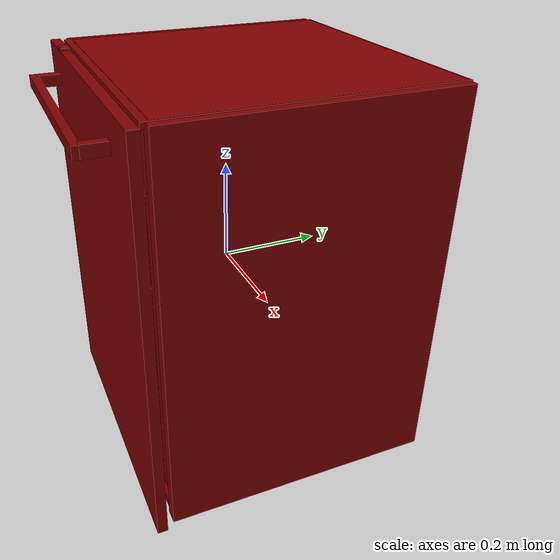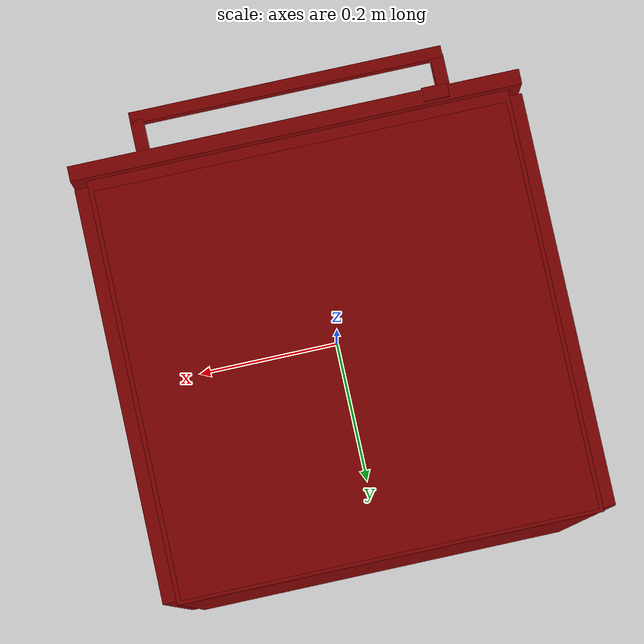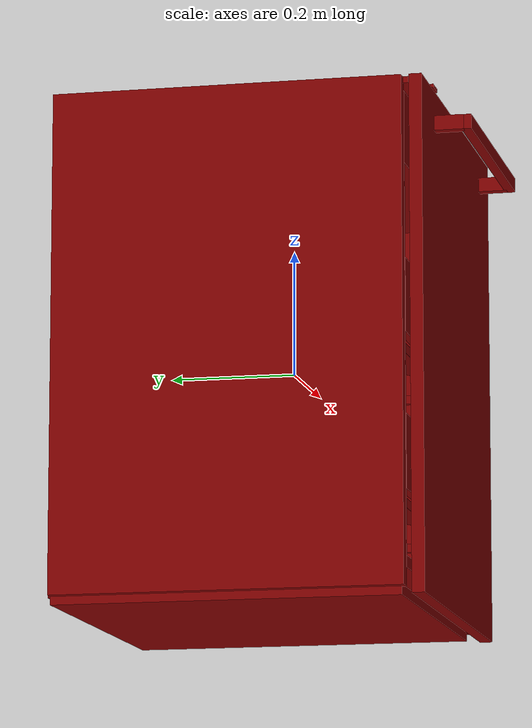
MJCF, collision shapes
<?xml version='1.0' encoding='UTF-8'?>
<mujoco model="model">
  <option timestep="0.002" gravity="0.0 0.0 -9.81"/>
  <compiler angle="radian"/>
  <asset>
    <mesh file="visuals/button_power.obj" name="button_power_vis"/>
    <mesh file="visuals/Body001.obj" name="Body001_vis"/>
    <mesh file="visuals/door.obj" name="door_vis"/>
    <mesh file="visuals/rack0.obj" name="rack0_vis"/>
    <mesh file="visuals/rack1.obj" name="rack1_vis"/>
    <texture file="visuals/T_BC001.png" name="Body001_material" type="2d"/>
    <material name="Body001_material" rgba="1 1 1 1.0" texture="Body001_material" shininess="0.1" specular="6"/>
    <texture file="visuals/T_BC001.png" name="door_material" type="2d"/>
    <material name="door_material" rgba="1 1 1 1.0" texture="door_material" shininess="0.1" specular="6"/>
    <texture file="visuals/T_BC001.png" name="button_power_material" type="2d"/>
    <material name="button_power_material" rgba="1 1 1 1.0" texture="button_power_material" shininess="0.1" specular="6"/>
    <texture file="visuals/T_BC001.png" name="rack0_material" type="2d"/>
    <material name="rack0_material" rgba="1 1 1 1.0" texture="rack0_material" shininess="0.1" specular="6"/>
    <texture file="visuals/T_BC001.png" name="rack1_material" type="2d"/>
    <material name="rack1_material" rgba="1 1 1 1.0" texture="rack1_material" shininess="0.1" specular="6"/>
  </asset>
  <default>
    <default class="visual">
      <geom conaffinity="0" contype="0" group="1" type="mesh"/>
    </default>
    <default class="collision">
      <geom group="0" rgba="0.5 0 0 0.5"/>
    </default>
    <default class="spawn">
      <geom group="0" rgba="1 1 1 0.5" contype="0" conaffinity="0"/>
      <site group="0" rgba="1 1 1 0.5"/>
    </default>
    <default class="region">
      <geom group="1" conaffinity="0" contype="0" rgba="0 1 0 0"/>
    </default>
  </default>
  <worldbody>
    <body>
      <body name="object">
        <geom mesh="Body001_vis" type="mesh" solimp="0.998 0.998 0.001" solref="0.001 1" friction="0.95 0.3 0.1" class="visual" material="Body001_material"/>
        <geom class="collision" type="box" pos="-0.00036234 0.28176484 0.00833044" size="0.2814403176307678 0.04106198996305466 0.39416447281837463" quat="1.0 0.0 0.0 0.0"/>
        <geom class="collision" type="box" pos="-0.00036234 0.04216632 0.39767548" size="0.2814466059207916 0.28169476985931396 0.004898284561932087" quat="1.0 0.0 0.0 0.0"/>
        <geom class="collision" type="box" pos="-0.28667429 0.04382579 0.00895210" size="0.011648095212876797 0.2752534747123718 0.3926711976528168" quat="1.0 0.0 0.0 0.0"/>
        <geom class="collision" type="box" pos="0.28510299 0.04382579 0.00895210" size="0.013638983480632305 0.2752538323402405 0.3926714360713959" quat="1.0 0.0 0.0 0.0"/>
        <geom class="collision" type="box" pos="-0.00036234 0.04667373 -0.38865549" size="0.2814757227897644 0.27234360575675964 0.00816165842115879" quat="1.0 0.0 0.0 0.0"/>
        <geom class="collision" type="box" pos="-0.25013936 0.04727859 -0.02722334" size="0.015567146241664886 0.27181267738342285 0.32058045268058777" quat="1.0 0.0 0.0 0.0"/>
        <geom class="collision" type="box" pos="0.25114334 0.04727859 -0.02722334" size="0.023964108899235725 0.2718128263950348 0.3205800950527191" quat="1.0 0.0 0.0 0.0"/>
        <geom class="collision" type="box" pos="-0.00061214 0.04727856 0.34046974" size="0.2754879593849182 0.2718161642551422 0.06244611740112305" quat="1.0 0.0 0.0 0.0"/>
        <geom class="collision" type="box" pos="-0.00652087 0.04727862 -0.33976794" size="0.23438744246959686 0.2718186378479004 0.009313549846410751" quat="1.0 0.0 0.0 0.0"/>
        <geom class="collision" type="box" pos="0.21967526 0.04727859 -0.00535924" size="0.006139175966382027 0.2178913801908493 0.0067922757007181644" quat="1.0 0.0 0.0 0.0"/>
        <geom class="collision" type="box" pos="0.21967526 0.04727859 -0.25062258" size="0.006139173172414303 0.2178913801908493 0.0067922757007181644" quat="1.0 0.0 0.0 0.0"/>
        <geom class="collision" type="box" pos="-0.22579145 0.04727859 -0.00473538" size="0.007670301478356123 0.21789081394672394 0.006792258005589247" quat="1.0 0.0 0.0 0.0"/>
        <geom class="collision" type="box" pos="-0.22579145 0.04727859 -0.25062258" size="0.007670306600630283 0.21789109706878662 0.006792266853153706" quat="1.0 0.0 0.0 0.0"/>
        <body name="door">
          <joint axis="1.0 0.0 0.0" pos="0.00018242 -0.26410335170752525 -0.39683436477493284" limited="true" name="door_joint" range="0.0 0.5235987755982988" type="hinge" damping="1" frictionloss="10" armature="1" stiffness="2"/>
          <geom mesh="door_vis" type="mesh" solimp="0.998 0.998 0.001" solref="0.001 1" friction="0.95 0.3 0.1" class="visual" material="door_material"/>
          <geom class="collision" type="box" pos="-0.00036234 -0.31701434 0.34504046" size="0.21125565469264984 0.007914526388049126 0.011457645334303379" quat="1.0 0.0 0.0 0.0" name="door_handle_main"/>
          <geom class="collision" type="box" pos="0.20221449 -0.28995174 0.34504046" size="0.008816145360469818 0.023113897070288658 0.011457663029432297" quat="1.0 0.0 0.0 0.0"/>
          <geom class="collision" type="box" pos="-0.20353897 -0.28995174 0.34504046" size="0.008816158398985863 0.023113969713449478 0.011457680724561214" quat="1.0 0.0 0.0 0.0"/>
          <geom class="collision" type="box" pos="0.00018242 -0.25414482 0.00196726" size="0.30183345079421997 0.009958531707525253 0.39880162477493286" quat="1.0 0.0 0.0 0.0" name="door_main"/>
          <body name="button_power">
            <joint axis="0.0 0.0 -1.0" pos="-0.18769951 -0.25586516 0.40550595" limited="true" name="button_power_joint" range="0.0 0.003" type="slide" damping="1" frictionloss="1" armature=".01" springref="-1" stiffness="4"/>
            <geom mesh="button_power_vis" type="mesh" solimp="0.998 0.998 0.001" solref="0.001 1" friction="0.95 0.3 0.1" class="visual" material="button_power_material"/>
            <geom class="collision" type="box" pos="-0.18791059 -0.25588995 0.40690058" size="0.017101047560572624 0.00900245737284422 0.0025712670758366585" quat="1.0 0.0 0.0 0.0"/>
          </body>
        </body>
        <body name="rack0">
          <geom class="region" name="reg_rack0" type="box" pos="-0.0016470950000000012 0.013524220000000003 -0.088446985" size="0.20115812500000002 0.19481879 0.088672845"/>
          <joint axis="0.0 -1.0 0.0" pos="-0.00221964 0.01166707 -0.14091631" limited="true" name="rack0_joint" range="0.0 0.2" type="slide" damping="1" frictionloss="1" armature=".01" stiffness="0.05"/>
          <geom mesh="rack0_vis" type="mesh" solimp="0.998 0.998 0.001" solref="0.001 1" friction="0.95 0.3 0.1" class="visual" material="rack0_material"/>
          <geom class="collision" type="box" pos="-0.00624185 -0.19375844 -0.14702625" size="0.2229871302843094 0.006409452296793461 0.05940254032611847" quat="1.0 0.0 0.0 0.0"/>
          <geom class="collision" type="box" pos="-0.00624185 0.21941292 -0.14662120" size="0.22330600023269653 0.006409641355276108 0.09147005528211594" quat="1.0 0.0 0.0 0.0"/>
          <geom class="collision" type="box" pos="-0.22204408 0.01349026 -0.14702625" size="0.006625048350542784 0.20031298696994781 0.05940164253115654" quat="1.0 0.0 0.0 0.0"/>
          <geom class="collision" type="box" pos="0.21335362 0.01349026 -0.14702625" size="0.006625059526413679 0.20031243562698364 0.05940169468522072" quat="1.0 0.0 0.0 0.0"/>
          <geom class="collision" type="box" pos="-0.00454231 0.12190130 -0.20753647" size="0.20721404254436493 0.10439314693212509 0.006625238806009293" quat="1.0 0.0 0.0 0.0"/>
          <geom class="collision" type="box" pos="0.12312634 0.14081541 -0.17458782" size="0.08457522839307785 0.006409274879842997 0.04970487952232361" quat="1.0 0.0 0.0 0.0"/>
          <geom class="collision" type="box" pos="-0.12908816 0.14081541 -0.17458782" size="0.08457522839307785 0.006409286521375179 0.04970487952232361" quat="1.0 0.0 0.0 0.0"/>
          <geom class="collision" type="box" pos="0.12172460 0.04002528 -0.17458782" size="0.10306160151958466 0.0064094350673258305 0.04970487952232361" quat="1.0 0.0 0.0 0.0"/>
          <geom class="collision" type="box" pos="-0.11866020 0.04002528 -0.17458782" size="0.0972515195608139 0.0064094350673258305 0.04970487952232361" quat="1.0 0.0 0.0 0.0"/>
          <geom class="collision" type="box" pos="-0.00454231 -0.02490339 -0.23499588" size="0.22267431020736694 0.047741953283548355 0.004735956434160471" quat="1.0 0.0 0.0 0.0"/>
          <geom class="collision" type="box" pos="-0.00454231 -0.12647952 -0.20115427" size="0.22267431020736694 0.05817246064543724 0.006625238340348005" quat="0.993613600730896 0.11283617466688156 -2.5054663825159542e-17 4.8184369564454835e-24"/>
          <geom class="collision" type="box" pos="-0.12602560 -0.07174440 -0.17458782" size="0.07013433426618576 0.0064094350673258305 0.04970487952232361" quat="1.0 0.0 0.0 0.0"/>
          <geom class="collision" type="box" pos="-0.12602560 -0.16745454 -0.17458782" size="0.07013444602489471 0.0064094350673258305 0.04970487952232361" quat="1.0 0.0 0.0 0.0"/>
          <geom class="collision" type="box" pos="-0.21426724 -0.03647560 -0.18548066" size="0.006409392226487398 0.028542038053274155 0.04970487952232361" quat="1.0 0.0 0.0 0.0"/>
          <geom class="collision" type="box" pos="0.21062486 -0.03647562 -0.18548066" size="0.0064093987457454205 0.028542084619402885 0.04970487952232361" quat="1.0 0.0 0.0 0.0"/>
          <geom class="collision" type="box" pos="0.07817481 -0.06876425 -0.21733076" size="0.13672895729541779 0.002350449562072754 0.02055334858596325" quat="1.0 0.0 0.0 0.0"/>
        </body>
        <body name="rack1">
          <geom class="region" name="reg_rack1" type="box" pos="-0.0019939999999999958 0.013524220000000003 0.155951655" size="0.20150503 0.19481879 0.08498577500000001"/>
          <joint axis="0.0 -1.0 0.0" pos="-0.00221962 0.01170290 0.09332770" limited="true" name="rack1_joint" range="0.0 0.3" type="slide" damping="1" frictionloss="1" armature=".01" stiffness="0.05"/>
          <geom mesh="rack1_vis" type="mesh" solimp="0.998 0.998 0.001" solref="0.001 1" friction="0.95 0.3 0.1" class="visual" material="rack1_material"/>
          <geom class="collision" type="box" pos="-0.00624185 -0.19375844 0.10098361" size="0.2229871302843094 0.006409452296793461 0.05940254032611847" quat="1.0 0.0 0.0 0.0"/>
          <geom class="collision" type="box" pos="-0.00624185 0.21941292 0.10138865" size="0.22330600023269653 0.00640992633998394 0.09147412329912186" quat="1.0 0.0 0.0 0.0"/>
          <geom class="collision" type="box" pos="-0.22204408 0.01349026 0.10098361" size="0.006624770350754261 0.20031298696994781 0.059400320053100586" quat="1.0 0.0 0.0 0.0"/>
          <geom class="collision" type="box" pos="0.21335362 0.01349026 0.10098361" size="0.006624781526625156 0.20031243562698364 0.059400372207164764" quat="1.0 0.0 0.0 0.0"/>
          <geom class="collision" type="box" pos="-0.00454231 0.12190130 0.04047339" size="0.20721404254436493 0.10439314693212509 0.006625238806009293" quat="1.0 0.0 0.0 0.0"/>
          <geom class="collision" type="box" pos="0.12312634 0.14081541 0.07342204" size="0.08457522839307785 0.00640910305082798 0.04970487952232361" quat="1.0 0.0 0.0 0.0"/>
          <geom class="collision" type="box" pos="-0.12908816 0.14081541 0.07342204" size="0.08457522839307785 0.006409114226698875 0.04970487952232361" quat="1.0 0.0 0.0 0.0"/>
          <geom class="collision" type="box" pos="0.12172460 0.04002528 0.07342204" size="0.10306160151958466 0.0064094350673258305 0.04970487952232361" quat="1.0 0.0 0.0 0.0"/>
          <geom class="collision" type="box" pos="-0.11866020 0.04002528 0.07342204" size="0.09724891185760498 0.0064094350673258305 0.04970487952232361" quat="1.0 0.0 0.0 0.0"/>
          <geom class="collision" type="box" pos="-0.00454231 -0.02490339 0.01122665" size="0.22267431020736694 0.047742314636707306 0.006625238806009293" quat="1.0 0.0 0.0 0.0"/>
          <geom class="collision" type="box" pos="-0.00454231 -0.12647952 0.04685560" size="0.22267431020736694 0.05817246064543724 0.006625238340348005" quat="0.993613600730896 0.11283617466688156 -2.5054663825159542e-17 4.8184369564454835e-24"/>
          <geom class="collision" type="box" pos="-0.12602644 -0.07174440 0.07342204" size="0.07013339549303055 0.0064094350673258305 0.04970487952232361" quat="1.0 0.0 0.0 0.0"/>
          <geom class="collision" type="box" pos="-0.12602644 -0.16745454 0.07139830" size="0.0701335147023201 0.0064094350673258305 0.05172862857580185" quat="1.0 0.0 0.0 0.0"/>
          <geom class="collision" type="box" pos="-0.21426724 -0.03647560 0.06252920" size="0.006409296300262213 0.02854135073721409 0.04970487952232361" quat="1.0 0.0 0.0 0.0"/>
          <geom class="collision" type="box" pos="0.21062486 -0.03647562 0.06252920" size="0.006409302819520235 0.02854139730334282 0.04970487952232361" quat="1.0 0.0 0.0 0.0"/>
          <geom class="collision" type="box" pos="0.07817481 -0.06876425 0.03067911" size="0.13672895729541779 0.002350449562072754 0.02055389992892742" quat="1.0 0.0 0.0 0.0"/>
        </body>
        <geom class="region" name="reg_int" type="box" pos="-0.001663899999999996 0.019642154999999994 -0.04225946999999999" size="0.22415294 0.216635725 0.2831969"/>
        <geom class="region" name="reg_main" type="box" pos="-4.999999997368221e-09 0.028388054999999995 -1.9999999989472883e-08" size="0.304818135 0.296612365 0.41047187"/>
      </body>
    </body>
  </worldbody>
  <actuator>
    <motor name="door_joint_actuator" joint="door_joint" gear="50"/>
    <motor name="rack0_joint_actuator" joint="rack0_joint" gear="50"/>
    <motor name="rack1_joint_actuator" joint="rack1_joint" gear="50"/>
    <motor name="button_power_joint_actuator" joint="button_power_joint" gear="0.5"/>
  </actuator>
</mujoco>
